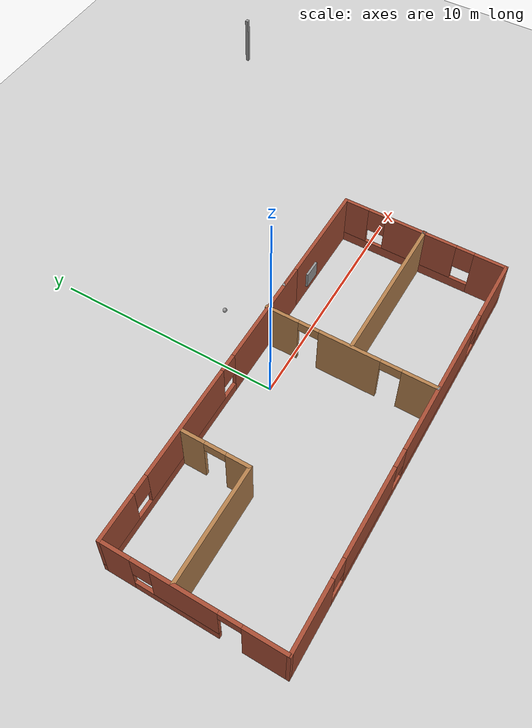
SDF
<sdf version="1.6">
 <world name="default">
  <light name="sun" type="directional">
   <pose>0 0 10 0 -0 0</pose>
   <diffuse>0.8 0.8 0.8 1</diffuse>
   <specular>0.2 0.2 0.2 1</specular>
   <attenuation>
    <range>1000</range>
    <constant>0.9</constant>
    <linear>0.01</linear>
    <quadratic>0.001</quadratic>
   </attenuation>
   <direction>-0.5 0.1 -0.9</direction>
  </light>
  <model name="ground_plane">
   <static>1</static>
   <link name="link">
    <collision name="collision">
     <geometry><plane><normal>0 0 1</normal><size>100 100</size></plane></geometry>
     <surface>
      <contact><collide_bitmask>65535</collide_bitmask></contact>
      <friction><ode><mu>100</mu><mu2>50</mu2></ode></friction>
     </surface>
    </collision>
    <visual name="visual">
     <cast_shadows>0</cast_shadows>
     <geometry><plane><normal>0 0 1</normal><size>100 100</size></plane></geometry>
     <material>
      <script><uri>file://media/materials/scripts/gazebo.material</uri><name>Gazebo/Grey</name></script>
     </material>
    </visual>
   </link>
  </model>
  <gravity>0 0 -9.8</gravity>
  <magnetic_field>6e-06 2.3e-05 -4.2e-05</magnetic_field>
  <atmosphere type="adiabatic"/>
  <physics name="default_physics" default="0" type="ode">
   <max_step_size>0.001</max_step_size>
   <real_time_factor>1</real_time_factor>
   <real_time_update_rate>1000</real_time_update_rate>
  </physics>
  <scene><ambient>0.4 0.4 0.4 1</ambient><background>0.7 0.7 0.7 1</background><shadows>1</shadows></scene>
  <spherical_coordinates>
   <surface_model>EARTH_WGS84</surface_model>
   <latitude_deg>0</latitude_deg>
   <longitude_deg>0</longitude_deg>
   <elevation>0</elevation>
   <heading_deg>0</heading_deg>
  </spherical_coordinates>
  <model name="House">
   <pose>3.87692 2.60224 0 0 -0 0</pose>
   <link name="Wall_13">
    <pose>-6.46944 -1.37364 0 0 -0 3.14159</pose>
    <visual name="Wall_13_Visual_0">
     <pose>-4.3125 0 1.25 0 -0 0</pose>
     <geometry><box><size>4.875 0.15 2.5</size></box></geometry>
     <material>
      <script><uri>file://media/materials/scripts/gazebo.material</uri><name>Gazebo/Bricks</name></script>
      <ambient>1 1 1 1</ambient>
     </material>
     <meta><layer>0</layer></meta>
    </visual>
    <collision name="Wall_13_Collision_0">
     <geometry><box><size>4.875 0.15 2.5</size></box></geometry>
     <pose>-4.3125 0 1.25 0 -0 0</pose>
    </collision>
    <visual name="Wall_13_Visual_1">
     <pose>2.4375 0 0.25 0 -0 0</pose>
     <geometry><box><size>8.625 0.15 0.5</size></box></geometry>
     <material>
      <script><uri>file://media/materials/scripts/gazebo.material</uri><name>Gazebo/Bricks</name></script>
      <ambient>1 1 1 1</ambient>
     </material>
     <meta><layer>0</layer></meta>
    </visual>
    <collision name="Wall_13_Collision_1">
     <geometry><box><size>8.625 0.15 0.5</size></box></geometry>
     <pose>2.4375 0 0.25 0 -0 0</pose>
    </collision>
    <visual name="Wall_13_Visual_2">
     <pose>1.425 0 1.5 0 -0 0</pose>
     <geometry><box><size>5 0.15 2</size></box></geometry>
     <material>
      <script><uri>file://media/materials/scripts/gazebo.material</uri><name>Gazebo/Bricks</name></script>
      <ambient>1 1 1 1</ambient>
     </material>
     <meta><layer>0</layer></meta>
    </visual>
    <collision name="Wall_13_Collision_2">
     <geometry><box><size>5 0.15 2</size></box></geometry>
     <pose>1.425 0 1.5 0 -0 0</pose>
    </collision>
    <visual name="Wall_13_Visual_3">
     <pose>5.7375 0 1.5 0 -0 0</pose>
     <geometry><box><size>2.025 0.15 2</size></box></geometry>
     <material>
      <script><uri>file://media/materials/scripts/gazebo.material</uri><name>Gazebo/Bricks</name></script>
      <ambient>1 1 1 1</ambient>
     </material>
     <meta><layer>0</layer></meta>
    </visual>
    <collision name="Wall_13_Collision_3">
     <geometry><box><size>2.025 0.15 2</size></box></geometry>
     <pose>5.7375 0 1.5 0 -0 0</pose>
    </collision>
    <visual name="Wall_13_Visual_4">
     <pose>-1.475 0 1.9 0 -0 0</pose>
     <geometry><box><size>0.8 0.15 1.2</size></box></geometry>
     <material>
      <script><uri>file://media/materials/scripts/gazebo.material</uri><name>Gazebo/Bricks</name></script>
      <ambient>1 1 1 1</ambient>
     </material>
     <meta><layer>0</layer></meta>
    </visual>
    <collision name="Wall_13_Collision_4">
     <geometry><box><size>0.8 0.15 1.2</size></box></geometry>
     <pose>-1.475 0 1.9 0 -0 0</pose>
    </collision>
    <visual name="Wall_13_Visual_5">
     <pose>4.325 0 1.9 0 -0 0</pose>
     <geometry><box><size>0.8 0.15 1.2</size></box></geometry>
     <material>
      <script><uri>file://media/materials/scripts/gazebo.material</uri><name>Gazebo/Bricks</name></script>
      <ambient>1 1 1 1</ambient>
     </material>
     <meta><layer>0</layer></meta>
    </visual>
    <collision name="Wall_13_Collision_5">
     <geometry><box><size>0.8 0.15 1.2</size></box></geometry>
     <pose>4.325 0 1.9 0 -0 0</pose>
    </collision>
   </link>
   <link name="Wall_14">
    <pose>-13.1444 -5.04864 0 0 0 -1.5708</pose>
    <visual name="Wall_14_Visual_0">
     <pose>-3.0725 0 1.25 0 -0 0</pose>
     <geometry><box><size>1.355 0.15 2.5</size></box></geometry>
     <material>
      <script><uri>file://media/materials/scripts/gazebo.material</uri><name>Gazebo/Bricks</name></script>
      <ambient>1 1 1 1</ambient>
     </material>
     <meta><layer>0</layer></meta>
    </visual>
    <collision name="Wall_14_Collision_0">
     <geometry><box><size>1.355 0.15 2.5</size></box></geometry>
     <pose>-3.0725 0 1.25 0 -0 0</pose>
    </collision>
    <visual name="Wall_14_Visual_1">
     <pose>2.8425 0 1.25 0 -0 0</pose>
     <geometry><box><size>1.815 0.15 2.5</size></box></geometry>
     <material>
      <script><uri>file://media/materials/scripts/gazebo.material</uri><name>Gazebo/Bricks</name></script>
      <ambient>1 1 1 1</ambient>
     </material>
     <meta><layer>0</layer></meta>
    </visual>
    <collision name="Wall_14_Collision_1">
     <geometry><box><size>1.815 0.15 2.5</size></box></geometry>
     <pose>2.8425 0 1.25 0 -0 0</pose>
    </collision>
    <visual name="Wall_14_Visual_2">
     <pose>-0.68 0 0.25 0 -0 0</pose>
     <geometry><box><size>3.43 0.15 0.5</size></box></geometry>
     <material>
      <script><uri>file://media/materials/scripts/gazebo.material</uri><name>Gazebo/Bricks</name></script>
      <ambient>1 1 1 1</ambient>
     </material>
     <meta><layer>0</layer></meta>
    </visual>
    <collision name="Wall_14_Collision_2">
     <geometry><box><size>3.43 0.15 0.5</size></box></geometry>
     <pose>-0.68 0 0.25 0 -0 0</pose>
    </collision>
    <visual name="Wall_14_Visual_3">
     <pose>-0.28 0 1.5 0 -0 0</pose>
     <geometry><box><size>2.63 0.15 2</size></box></geometry>
     <material>
      <script><uri>file://media/materials/scripts/gazebo.material</uri><name>Gazebo/Bricks</name></script>
      <ambient>1 1 1 1</ambient>
     </material>
     <meta><layer>0</layer></meta>
    </visual>
    <collision name="Wall_14_Collision_3">
     <geometry><box><size>2.63 0.15 2</size></box></geometry>
     <pose>-0.28 0 1.5 0 -0 0</pose>
    </collision>
    <visual name="Wall_14_Visual_4">
     <pose>-1.995 0 1.9 0 -0 0</pose>
     <geometry><box><size>0.8 0.15 1.2</size></box></geometry>
     <material>
      <script><uri>file://media/materials/scripts/gazebo.material</uri><name>Gazebo/Bricks</name></script>
      <ambient>1 1 1 1</ambient>
     </material>
     <meta><layer>0</layer></meta>
    </visual>
    <collision name="Wall_14_Collision_4">
     <geometry><box><size>0.8 0.15 1.2</size></box></geometry>
     <pose>-1.995 0 1.9 0 -0 0</pose>
    </collision>
    <visual name="Wall_14_Visual_5">
     <pose>1.485 0 2.25 0 -0 0</pose>
     <geometry><box><size>0.9 0.15 0.5</size></box></geometry>
     <material>
      <script><uri>file://media/materials/scripts/gazebo.material</uri><name>Gazebo/Bricks</name></script>
      <ambient>1 1 1 1</ambient>
     </material>
     <meta><layer>0</layer></meta>
    </visual>
    <collision name="Wall_14_Collision_5">
     <geometry><box><size>0.9 0.15 0.5</size></box></geometry>
     <pose>1.485 0 2.25 0 -0 0</pose>
    </collision>
   </link>
   <link name="Wall_15">
    <pose>-4.21944 -8.72364 0 0 -0 0</pose>
    <visual name="Wall_15_Visual_0">
     <pose>-7.5475 0 1.25 0 -0 0</pose>
     <geometry><box><size>2.905 0.15 2.5</size></box></geometry>
     <material>
      <script><uri>file://media/materials/scripts/gazebo.material</uri><name>Gazebo/Bricks</name></script>
      <ambient>1 1 1 1</ambient>
     </material>
     <meta><layer>0</layer></meta>
    </visual>
    <collision name="Wall_15_Collision_0">
     <geometry><box><size>2.905 0.15 2.5</size></box></geometry>
     <pose>-7.5475 0 1.25 0 -0 0</pose>
    </collision>
    <visual name="Wall_15_Visual_1">
     <pose>1.4525 0 0.25 0 -0 0</pose>
     <geometry><box><size>15.095 0.15 0.5</size></box></geometry>
     <material>
      <script><uri>file://media/materials/scripts/gazebo.material</uri><name>Gazebo/Bricks</name></script>
      <ambient>1 1 1 1</ambient>
     </material>
     <meta><layer>0</layer></meta>
    </visual>
    <collision name="Wall_15_Collision_1">
     <geometry><box><size>15.095 0.15 0.5</size></box></geometry>
     <pose>1.4525 0 0.25 0 -0 0</pose>
    </collision>
    <visual name="Wall_15_Visual_2">
     <pose>-3.375 0 1.5 0 -0 0</pose>
     <geometry><box><size>3.84 0.15 2</size></box></geometry>
     <material>
      <script><uri>file://media/materials/scripts/gazebo.material</uri><name>Gazebo/Bricks</name></script>
      <ambient>1 1 1 1</ambient>
     </material>
     <meta><layer>0</layer></meta>
    </visual>
    <collision name="Wall_15_Collision_2">
     <geometry><box><size>3.84 0.15 2</size></box></geometry>
     <pose>-3.375 0 1.5 0 -0 0</pose>
    </collision>
    <visual name="Wall_15_Visual_3">
     <pose>2.345 0 1.5 0 -0 0</pose>
     <geometry><box><size>6 0.15 2</size></box></geometry>
     <material>
      <script><uri>file://media/materials/scripts/gazebo.material</uri><name>Gazebo/Bricks</name></script>
      <ambient>1 1 1 1</ambient>
     </material>
     <meta><layer>0</layer></meta>
    </visual>
    <collision name="Wall_15_Collision_3">
     <geometry><box><size>6 0.15 2</size></box></geometry>
     <pose>2.345 0 1.5 0 -0 0</pose>
    </collision>
    <visual name="Wall_15_Visual_4">
     <pose>7.5725 0 1.5 0 -0 0</pose>
     <geometry><box><size>2.855 0.15 2</size></box></geometry>
     <material>
      <script><uri>file://media/materials/scripts/gazebo.material</uri><name>Gazebo/Bricks</name></script>
      <ambient>1 1 1 1</ambient>
     </material>
     <meta><layer>0</layer></meta>
    </visual>
    <collision name="Wall_15_Collision_4">
     <geometry><box><size>2.855 0.15 2</size></box></geometry>
     <pose>7.5725 0 1.5 0 -0 0</pose>
    </collision>
    <visual name="Wall_15_Visual_5">
     <pose>-5.695 0 1.9 0 -0 0</pose>
     <geometry><box><size>0.8 0.15 1.2</size></box></geometry>
     <material>
      <script><uri>file://media/materials/scripts/gazebo.material</uri><name>Gazebo/Bricks</name></script>
      <ambient>1 1 1 1</ambient>
     </material>
     <meta><layer>0</layer></meta>
    </visual>
    <collision name="Wall_15_Collision_5">
     <geometry><box><size>0.8 0.15 1.2</size></box></geometry>
     <pose>-5.695 0 1.9 0 -0 0</pose>
    </collision>
    <visual name="Wall_15_Visual_6">
     <pose>-1.055 0 1.9 0 -0 0</pose>
     <geometry><box><size>0.8 0.15 1.2</size></box></geometry>
     <material>
      <script><uri>file://media/materials/scripts/gazebo.material</uri><name>Gazebo/Bricks</name></script>
      <ambient>1 1 1 1</ambient>
     </material>
     <meta><layer>0</layer></meta>
    </visual>
    <collision name="Wall_15_Collision_6">
     <geometry><box><size>0.8 0.15 1.2</size></box></geometry>
     <pose>-1.055 0 1.9 0 -0 0</pose>
    </collision>
    <visual name="Wall_15_Visual_7">
     <pose>5.745 0 1.9 0 -0 0</pose>
     <geometry><box><size>0.8 0.15 1.2</size></box></geometry>
     <material>
      <script><uri>file://media/materials/scripts/gazebo.material</uri><name>Gazebo/Bricks</name></script>
      <ambient>1 1 1 1</ambient>
     </material>
     <meta><layer>0</layer></meta>
    </visual>
    <collision name="Wall_15_Collision_7">
     <geometry><box><size>0.8 0.15 1.2</size></box></geometry>
     <pose>5.745 0 1.9 0 -0 0</pose>
    </collision>
   </link>
   <link name="Wall_16">
    <pose>4.70556 -5.04864 0 0 -0 1.5708</pose>
    <visual name="Wall_16_Visual_0">
     <pose>-3.0175 0 1.25 0 -0 0</pose>
     <geometry><box><size>1.465 0.15 2.5</size></box></geometry>
     <material>
      <script><uri>file://media/materials/scripts/gazebo.material</uri><name>Gazebo/Bricks</name></script>
      <ambient>1 1 1 1</ambient>
     </material>
     <meta><layer>0</layer></meta>
    </visual>
    <collision name="Wall_16_Collision_0">
     <geometry><box><size>1.465 0.15 2.5</size></box></geometry>
     <pose>-3.0175 0 1.25 0 -0 0</pose>
    </collision>
    <visual name="Wall_16_Visual_1">
     <pose>0.7325 0 0.25 0 -0 0</pose>
     <geometry><box><size>6.035 0.15 0.5</size></box></geometry>
     <material>
      <script><uri>file://media/materials/scripts/gazebo.material</uri><name>Gazebo/Bricks</name></script>
      <ambient>1 1 1 1</ambient>
     </material>
     <meta><layer>0</layer></meta>
    </visual>
    <collision name="Wall_16_Collision_1">
     <geometry><box><size>6.035 0.15 0.5</size></box></geometry>
     <pose>0.7325 0 0.25 0 -0 0</pose>
    </collision>
    <visual name="Wall_16_Visual_2">
     <pose>0.135 0 1.5 0 -0 0</pose>
     <geometry><box><size>3.24 0.15 2</size></box></geometry>
     <material>
      <script><uri>file://media/materials/scripts/gazebo.material</uri><name>Gazebo/Bricks</name></script>
      <ambient>1 1 1 1</ambient>
     </material>
     <meta><layer>0</layer></meta>
    </visual>
    <collision name="Wall_16_Collision_2">
     <geometry><box><size>3.24 0.15 2</size></box></geometry>
     <pose>0.135 0 1.5 0 -0 0</pose>
    </collision>
    <visual name="Wall_16_Visual_3">
     <pose>3.1525 0 1.5 0 -0 0</pose>
     <geometry><box><size>1.195 0.15 2</size></box></geometry>
     <material>
      <script><uri>file://media/materials/scripts/gazebo.material</uri><name>Gazebo/Bricks</name></script>
      <ambient>1 1 1 1</ambient>
     </material>
     <meta><layer>0</layer></meta>
    </visual>
    <collision name="Wall_16_Collision_3">
     <geometry><box><size>1.195 0.15 2</size></box></geometry>
     <pose>3.1525 0 1.5 0 -0 0</pose>
    </collision>
    <visual name="Wall_16_Visual_4">
     <pose>-1.885 0 1.9 0 -0 0</pose>
     <geometry><box><size>0.8 0.15 1.2</size></box></geometry>
     <material>
      <script><uri>file://media/materials/scripts/gazebo.material</uri><name>Gazebo/Bricks</name></script>
      <ambient>1 1 1 1</ambient>
     </material>
     <meta><layer>0</layer></meta>
    </visual>
    <collision name="Wall_16_Collision_4">
     <geometry><box><size>0.8 0.15 1.2</size></box></geometry>
     <pose>-1.885 0 1.9 0 -0 0</pose>
    </collision>
    <visual name="Wall_16_Visual_5">
     <pose>2.155 0 1.9 0 -0 0</pose>
     <geometry><box><size>0.8 0.15 1.2</size></box></geometry>
     <material>
      <script><uri>file://media/materials/scripts/gazebo.material</uri><name>Gazebo/Bricks</name></script>
      <ambient>1 1 1 1</ambient>
     </material>
     <meta><layer>0</layer></meta>
    </visual>
    <collision name="Wall_16_Collision_5">
     <geometry><box><size>0.8 0.15 1.2</size></box></geometry>
     <pose>2.155 0 1.9 0 -0 0</pose>
    </collision>
   </link>
   <link name="Wall_17">
    <collision name="Wall_17_Collision">
     <geometry><box><size>5.5 0.15 2.5</size></box></geometry>
     <pose>0 0 1.25 0 -0 0</pose>
    </collision>
    <visual name="Wall_17_Visual">
     <pose>0 0 1.25 0 -0 0</pose>
     <geometry><box><size>5.5 0.15 2.5</size></box></geometry>
     <material>
      <script><uri>file://media/materials/scripts/gazebo.material</uri><name>Gazebo/Bricks</name></script>
      <ambient>1 1 1 1</ambient>
     </material>
     <meta><layer>0</layer></meta>
    </visual>
    <pose>2.03056 -1.37364 0 0 -0 3.14159</pose>
   </link>
   <link name="Wall_18">
    <collision name="Wall_18_Collision">
     <geometry><box><size>0.16 0.15 2.5</size></box></geometry>
     <pose>0 0 1.25 0 -0 0</pose>
    </collision>
    <visual name="Wall_18_Visual">
     <pose>0 0 1.25 0 -0 0</pose>
     <geometry><box><size>0.16 0.15 2.5</size></box></geometry>
     <material>
      <script><uri>file://media/materials/scripts/gazebo.material</uri><name>Gazebo/Grey</name></script>
      <ambient>1 1 1 1</ambient>
     </material>
     <meta><layer>0</layer></meta>
    </visual>
    <pose>-0.63944 -1.37364 0 0 -0 0</pose>
   </link>
   <link name="Wall_2">
    <collision name="Wall_2_Collision">
     <geometry><box><size>0.16 0.15 2.5</size></box></geometry>
     <pose>0 0 1.25 0 -0 0</pose>
    </collision>
    <visual name="Wall_2_Visual">
     <pose>0 0 1.25 0 -0 0</pose>
     <geometry><box><size>0.16 0.15 2.5</size></box></geometry>
     <material>
      <script><uri>file://media/materials/scripts/gazebo.material</uri><name>Gazebo/Grey</name></script>
      <ambient>1 1 1 1</ambient>
     </material>
     <meta><layer>0</layer></meta>
    </visual>
    <pose>13.1394 8.72364 0 0 -0 0</pose>
   </link>
   <link name="Wall_28">
    <pose>-1.95444 -5.00864 0 0 0 -1.5708</pose>
    <visual name="Wall_28_Visual_0">
     <pose>-2.9975 0 1.25 0 -0 0</pose>
     <geometry><box><size>1.505 0.15 2.5</size></box></geometry>
     <material>
      <script><uri>file://media/materials/scripts/gazebo.material</uri><name>Gazebo/Wood</name></script>
      <ambient>1 1 1 1</ambient>
     </material>
     <meta><layer>0</layer></meta>
    </visual>
    <collision name="Wall_28_Collision_0">
     <geometry><box><size>1.505 0.15 2.5</size></box></geometry>
     <pose>-2.9975 0 1.25 0 -0 0</pose>
    </collision>
    <visual name="Wall_28_Visual_1">
     <pose>-0.015 0 1.25 0 -0 0</pose>
     <geometry><box><size>2.66 0.15 2.5</size></box></geometry>
     <material>
      <script><uri>file://media/materials/scripts/gazebo.material</uri><name>Gazebo/Wood</name></script>
      <ambient>1 1 1 1</ambient>
     </material>
     <meta><layer>0</layer></meta>
    </visual>
    <collision name="Wall_28_Collision_1">
     <geometry><box><size>2.66 0.15 2.5</size></box></geometry>
     <pose>-0.015 0 1.25 0 -0 0</pose>
    </collision>
    <visual name="Wall_28_Visual_2">
     <pose>2.9825 0 1.25 0 -0 0</pose>
     <geometry><box><size>1.535 0.15 2.5</size></box></geometry>
     <material>
      <script><uri>file://media/materials/scripts/gazebo.material</uri><name>Gazebo/Wood</name></script>
      <ambient>1 1 1 1</ambient>
     </material>
     <meta><layer>0</layer></meta>
    </visual>
    <collision name="Wall_28_Collision_2">
     <geometry><box><size>1.535 0.15 2.5</size></box></geometry>
     <pose>2.9825 0 1.25 0 -0 0</pose>
    </collision>
    <visual name="Wall_28_Visual_3">
     <pose>-1.795 0 2.25 0 -0 0</pose>
     <geometry><box><size>0.9 0.15 0.5</size></box></geometry>
     <material>
      <script><uri>file://media/materials/scripts/gazebo.material</uri><name>Gazebo/Wood</name></script>
      <ambient>1 1 1 1</ambient>
     </material>
     <meta><layer>0</layer></meta>
    </visual>
    <collision name="Wall_28_Collision_3">
     <geometry><box><size>0.9 0.15 0.5</size></box></geometry>
     <pose>-1.795 0 2.25 0 -0 0</pose>
    </collision>
    <visual name="Wall_28_Visual_4">
     <pose>1.765 0 2.25 0 -0 0</pose>
     <geometry><box><size>0.9 0.15 0.5</size></box></geometry>
     <material>
      <script><uri>file://media/materials/scripts/gazebo.material</uri><name>Gazebo/Wood</name></script>
      <ambient>1 1 1 1</ambient>
     </material>
     <meta><layer>0</layer></meta>
    </visual>
    <collision name="Wall_28_Collision_4">
     <geometry><box><size>0.9 0.15 0.5</size></box></geometry>
     <pose>1.765 0 2.25 0 -0 0</pose>
    </collision>
   </link>
   <link name="Wall_29">
    <collision name="Wall_29_Collision">
     <geometry><box><size>0.16 0.15 2.5</size></box></geometry>
     <pose>0 0 1.25 0 -0 0</pose>
    </collision>
    <visual name="Wall_29_Visual">
     <pose>0 0 1.25 0 -0 0</pose>
     <geometry><box><size>0.16 0.15 2.5</size></box></geometry>
     <material>
      <script><uri>file://media/materials/scripts/gazebo.material</uri><name>Gazebo/Grey</name></script>
      <ambient>1 1 1 1</ambient>
     </material>
     <meta><layer>0</layer></meta>
    </visual>
    <pose>-1.94944 -8.68364 0 0 -0 0</pose>
   </link>
   <link name="Wall_34">
    <collision name="Wall_34_Collision">
     <geometry><box><size>0.16 0.15 2.5</size></box></geometry>
     <pose>0 0 1.25 0 -0 0</pose>
    </collision>
    <visual name="Wall_34_Visual">
     <pose>0 0 1.25 0 -0 0</pose>
     <geometry><box><size>0.16 0.15 2.5</size></box></geometry>
     <material>
      <script><uri>file://media/materials/scripts/gazebo.material</uri><name>Gazebo/Grey</name></script>
      <ambient>1 1 1 1</ambient>
     </material>
     <meta><layer>0</layer></meta>
    </visual>
    <pose>4.73056 -5.05364 0 0 -0 0</pose>
   </link>
   <link name="Wall_35">
    <collision name="Wall_35_Collision">
     <geometry><box><size>6.75 0.15 2.5</size></box></geometry>
     <pose>0 0 1.25 0 -0 0</pose>
    </collision>
    <visual name="Wall_35_Visual">
     <pose>0 0 1.25 0 -0 0</pose>
     <geometry><box><size>6.75 0.15 2.5</size></box></geometry>
     <material>
      <script><uri>file://media/materials/scripts/gazebo.material</uri><name>Gazebo/Wood</name></script>
      <ambient>1 1 1 1</ambient>
     </material>
     <meta><layer>0</layer></meta>
    </visual>
    <pose>1.43556 -5.05364 0 0 -0 3.14159</pose>
   </link>
   <link name="Wall_37">
    <collision name="Wall_37_Collision">
     <geometry><box><size>5 0.15 2.5</size></box></geometry>
     <pose>0 0 1.25 0 -0 0</pose>
    </collision>
    <visual name="Wall_37_Visual">
     <pose>0 0 1.25 0 -0 0</pose>
     <geometry><box><size>5 0.15 2.5</size></box></geometry>
     <material>
      <script><uri>file://media/materials/scripts/gazebo.material</uri><name>Gazebo/Wood</name></script>
      <ambient>1 1 1 1</ambient>
     </material>
     <meta><layer>0</layer></meta>
    </visual>
    <pose>-10.6994 -4.33364 0 0 -0 3.14159</pose>
   </link>
   <link name="Wall_43">
    <pose>-8.27444 -2.90864 0 0 -0 1.5708</pose>
    <visual name="Wall_43_Visual_0">
     <pose>-0.9675 0 1.25 0 -0 0</pose>
     <geometry><box><size>1.065 0.15 2.5</size></box></geometry>
     <material>
      <script><uri>file://media/materials/scripts/gazebo.material</uri><name>Gazebo/Wood</name></script>
      <ambient>1 1 1 1</ambient>
     </material>
     <meta><layer>0</layer></meta>
    </visual>
    <collision name="Wall_43_Collision_0">
     <geometry><box><size>1.065 0.15 2.5</size></box></geometry>
     <pose>-0.9675 0 1.25 0 -0 0</pose>
    </collision>
    <visual name="Wall_43_Visual_1">
     <pose>0.9825 0 1.25 0 -0 0</pose>
     <geometry><box><size>1.035 0.15 2.5</size></box></geometry>
     <material>
      <script><uri>file://media/materials/scripts/gazebo.material</uri><name>Gazebo/Wood</name></script>
      <ambient>1 1 1 1</ambient>
     </material>
     <meta><layer>0</layer></meta>
    </visual>
    <collision name="Wall_43_Collision_1">
     <geometry><box><size>1.035 0.15 2.5</size></box></geometry>
     <pose>0.9825 0 1.25 0 -0 0</pose>
    </collision>
    <visual name="Wall_43_Visual_2">
     <pose>0.015 0 2.25 0 -0 0</pose>
     <geometry><box><size>0.9 0.15 0.5</size></box></geometry>
     <material>
      <script><uri>file://media/materials/scripts/gazebo.material</uri><name>Gazebo/Wood</name></script>
      <ambient>1 1 1 1</ambient>
     </material>
     <meta><layer>0</layer></meta>
    </visual>
    <collision name="Wall_43_Collision_2">
     <geometry><box><size>0.9 0.15 0.5</size></box></geometry>
     <pose>0.015 0 2.25 0 -0 0</pose>
    </collision>
   </link>
   <link name="Window_3">
    <collision name="Window_3_Collision">
     <geometry><box><size>0.8 0.17 0.8</size></box></geometry>
     <pose>0 0 0.4 0 -0 0</pose>
    </collision>
    <visual name="Window_3_Visual">
     <pose>0 0 0.4 0 -0 0</pose>
     <geometry><box><size>0.8 0.17 0.8</size></box></geometry>
     <material>
      <script><uri>file://media/materials/scripts/gazebo.material</uri><name>Gazebo/Grey</name></script>
     </material>
    </visual>
    <pose>1.48556 -1.45364 0.5 0 -0 0</pose>
   </link>
   <static>1</static>
  </model>
  <model name="my_ball">
   <link name="link_0">
    <inertial>
     <mass>1</mass>
     <inertia><ixx>0.1</ixx><ixy>0</ixy><ixz>0</ixz><iyy>0.1</iyy><iyz>0</iyz><izz>0.1</izz></inertia>
    </inertial>
    <visual name="visual">
     <geometry><sphere><radius>0.1</radius></sphere></geometry>
     <material>
      <lighting>1</lighting>
      <script><uri>file://media/materials/scripts/gazebo.material</uri><name>Gazebo/Grey</name></script>
      <shader type="pixel"><normal_map>__default__</normal_map></shader>
      <ambient>1 1 1 1</ambient>
      <diffuse>1 1 1 1</diffuse>
      <specular>1 1 1 1</specular>
      <emissive>1 1 1 1</emissive>
     </material>
    </visual>
    <collision name="collision">
     <geometry><sphere><radius>0.1</radius></sphere></geometry>
     <surface>
      <friction>
       <ode><mu>1</mu><mu2>1</mu2><fdir1>0 0 0</fdir1><slip1>0</slip1><slip2>0</slip2></ode>
       <torsional>
        <coefficient>1</coefficient>
        <patch_radius>0</patch_radius>
        <surface_radius>0</surface_radius>
        <use_patch_radius>1</use_patch_radius>
        <ode><slip>0</slip></ode>
       </torsional>
      </friction>
      <bounce><restitution_coefficient>0</restitution_coefficient><threshold>1e+06</threshold></bounce>
      <contact>
       <collide_without_contact>0</collide_without_contact>
       <collide_without_contact_bitmask>1</collide_without_contact_bitmask>
       <collide_bitmask>1</collide_bitmask>
       <ode>
        <soft_cfm>0</soft_cfm>
        <soft_erp>0.2</soft_erp>
        <kp>1e+13</kp>
        <kd>1</kd>
        <max_vel>0.01</max_vel>
        <min_depth>0</min_depth>
       </ode>
       <bullet>
        <split_impulse>1</split_impulse>
        <split_impulse_penetration_threshold>-0.01</split_impulse_penetration_threshold>
        <soft_cfm>0</soft_cfm>
        <soft_erp>0.2</soft_erp>
        <kp>1e+13</kp>
        <kd>1</kd>
       </bullet>
      </contact>
     </surface>
    </collision>
   </link>
   <static>0</static>
   <pose>2.41309 3.6495 0 0 -0 0</pose>
  </model>
 </world>
</sdf>
